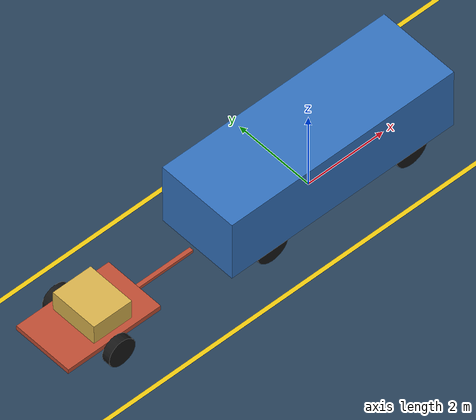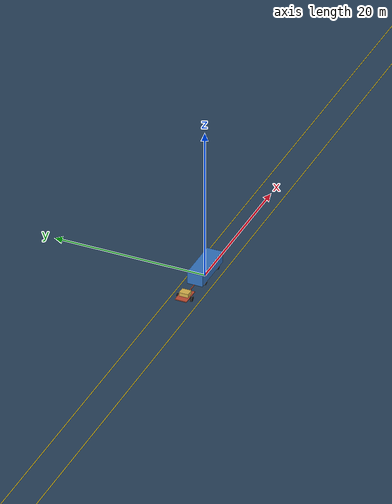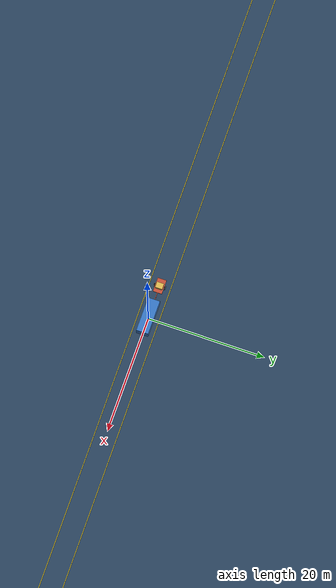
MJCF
<mujoco model="block_pickup_trailer">
  <compiler angle="degree"/>
  <option timestep="0.002" gravity="0 0 -9.81" integrator="implicitfast"/>

  <asset>
    <texture type="skybox" builtin="gradient" rgb1="0.3 0.5 0.7" rgb2="0 0 0" width="512" height="512"/>
    <texture name="grid" type="2d" builtin="checker" rgb1="0.2 0.3 0.4" rgb2="0.1 0.2 0.3" width="512" height="512"/>
    <material name="grid" texture="grid" texrepeat="5 5" texuniform="true"/>
    <material name="truck_mat" rgba="0.2 0.45 0.75 1"/>
    <material name="trailer_mat" rgba="0.75 0.3 0.2 1"/>
    <material name="cargo_mat" rgba="0.85 0.7 0.3 1"/>
    <material name="tire_mat" rgba="0.08 0.08 0.08 1"/>
    <material name="lane_mat" rgba="0.95 0.8 0.06 1"/>
  </asset>

  <default>
    <geom condim="3" friction="1.2 0.005 0.0001" contype="1" conaffinity="1"/>
    <default class="tire">
      <geom type="cylinder" material="tire_mat" friction="1.3 0.005 0.0001" contype="2" conaffinity="2" priority="1"/>
    </default>
    <default class="spin">
      <joint type="hinge" axis="0 1 0" damping="0.5"/>
    </default>
  </default>

  <worldbody>
    <light pos="0 0 10" dir="0 0 -1" directional="true"/>
    <geom name="floor" type="plane" size="500 200 0.1" material="grid" contype="3" conaffinity="3"/>

    <!-- ===== LANE: 3.66 m wide, yellow lines both sides, no collision ===== -->
    <geom name="lane_line_left"  type="box" size="500 0.05 0.001" pos="0  1.83 0.002" material="lane_mat" contype="0" conaffinity="0"/>
    <geom name="lane_line_right" type="box" size="500 0.05 0.001" pos="0 -1.83 0.002" material="lane_mat" contype="0" conaffinity="0"/>

    <!-- ================= PICKUP TRUCK (single block, no suspension) ================= -->
    <!-- CAR_ROOT_START -->
    <body name="car" pos="0 0 0.60">
      <freejoint name="car_root"/>
    <!-- CAR_ROOT_END -->
      <inertial pos="0.26 0 0.10" mass="2200" diaginertia="1300 5500 6000"/>
      <geom name="truck_block" type="box" size="2.95 1.015 0.80" pos="0 0 0.55" material="truck_mat"/>
      <site name="imu_car" pos="0.26 0 0.10" size="0.03" rgba="1 0 0 0.5"/>
      <site name="tow_eye" pos="1.85 0 -0.19" size="0.03" rgba="0 1 0 0.8"/>

      <!-- front: steer knuckle + wheel, rigid mount at z = -0.19 (tire r 0.41) -->
      <body name="fl_knuckle" pos="1.85 0.86 -0.19">
        <joint name="fl_steer" type="hinge" axis="0 0 1" range="-35 35" damping="20"/>
        <geom type="sphere" size="0.05" mass="8" material="truck_mat" contype="0" conaffinity="0"/>
        <body name="fl_wheel">
          <joint name="fl_hinge" class="spin"/>
          <geom name="fl_tire" class="tire" size="0.41 0.1375" zaxis="0 1 0" mass="45"/>
        </body>
      </body>
      <body name="fr_knuckle" pos="1.85 -0.86 -0.19">
        <joint name="fr_steer" type="hinge" axis="0 0 1" range="-35 35" damping="20"/>
        <geom type="sphere" size="0.05" mass="8" material="truck_mat" contype="0" conaffinity="0"/>
        <body name="fr_wheel">
          <joint name="fr_hinge" class="spin"/>
          <geom name="fr_tire" class="tire" size="0.41 0.1375" zaxis="0 1 0" mass="45"/>
        </body>
      </body>

      <!-- rear (driven), rigid mount -->
      <body name="rl_wheel" pos="-1.85 0.86 -0.19">
        <joint name="rl_hinge" class="spin"/>
        <geom name="rl_tire" class="tire" size="0.41 0.1375" zaxis="0 1 0" mass="45"/>
      </body>
      <body name="rr_wheel" pos="-1.85 -0.86 -0.19">
        <joint name="rr_hinge" class="spin"/>
        <geom name="rr_tire" class="tire" size="0.41 0.1375" zaxis="0 1 0" mass="45"/>
      </body>

      <!-- TRAILER_START -->
      <body name="trailer" pos="-3.10 0 -0.15">
        <joint name="hitch" type="ball" limited="true" range="0 45" damping="0.5"/>
        <site name="imu_trailer" pos="-2.720 0 0.10" size="0.03" rgba="1 0 0 0.5"/>
        <geom name="trailer_tongue" type="box" size="0.750 0.05 0.04" pos="-0.750 0 0" mass="45" material="trailer_mat"/>
        <geom name="trailer_bed" type="box" size="1.22 0.76 0.06" pos="-2.720 0 0.10" mass="250" material="trailer_mat"/>
        <geom name="cargo" type="box" size="0.50 0.60 0.25" pos="-2.620 0 0.41" mass="350" material="cargo_mat"/>
        <body name="tl_wheel" pos="-2.720 0.88 -0.105">
          <joint name="tl_hinge" class="spin"/>
          <geom name="tl_tire" class="tire" size="0.345 0.1025" zaxis="0 1 0" mass="25" friction="0.9 0.005 0.0001"/>
        </body>
        <body name="tr_wheel" pos="-2.720 -0.88 -0.105">
          <joint name="tr_hinge" class="spin"/>
          <geom name="tr_tire" class="tire" size="0.345 0.1025" zaxis="0 1 0" mass="25" friction="0.9 0.005 0.0001"/>
        </body>
      </body>
      <!-- TRAILER_END -->
    </body>
    <!-- CAR_END -->
  </worldbody>

  <actuator>
    <velocity name="drive_left"  joint="rl_hinge" kv="150" ctrlrange="0 60"/>
    <velocity name="drive_right" joint="rr_hinge" kv="150" ctrlrange="0 60"/>
    <position name="steer_left"  joint="fl_steer" kp="9000" kv="400" ctrlrange="-0.61 0.61"/>
    <position name="steer_right" joint="fr_steer" kp="9000" kv="400" ctrlrange="-0.61 0.61"/>
  </actuator>

  <sensor>
    <!-- truck IMU -->
    <accelerometer name="car_imu_accel" site="imu_car"/>
    <gyro name="car_imu_gyro" site="imu_car"/>
    <framequat name="car_imu_quat" objtype="site" objname="imu_car"/>
    <!-- trailer IMU -->
    <accelerometer name="trailer_imu_accel" site="imu_trailer"/>
    <gyro name="trailer_imu_gyro" site="imu_trailer"/>
    <framequat name="trailer_imu_quat" objtype="site" objname="imu_trailer"/>
    <!-- trailer angle relative to truck (ball joint quaternion) -->
    <ballquat name="hitch_angle" joint="hitch"/>
    <framepos name="trailer_pos" objtype="body" objname="trailer"/>
    <frameyaxis name="trailer_yaxis" objtype="body" objname="trailer"/>
  </sensor>
</mujoco>
